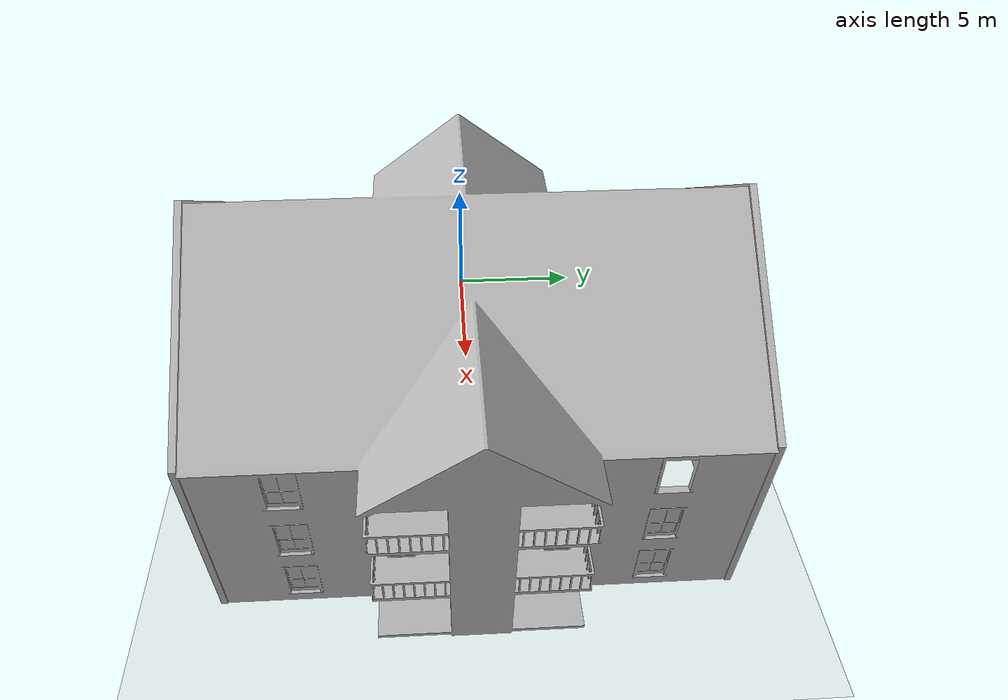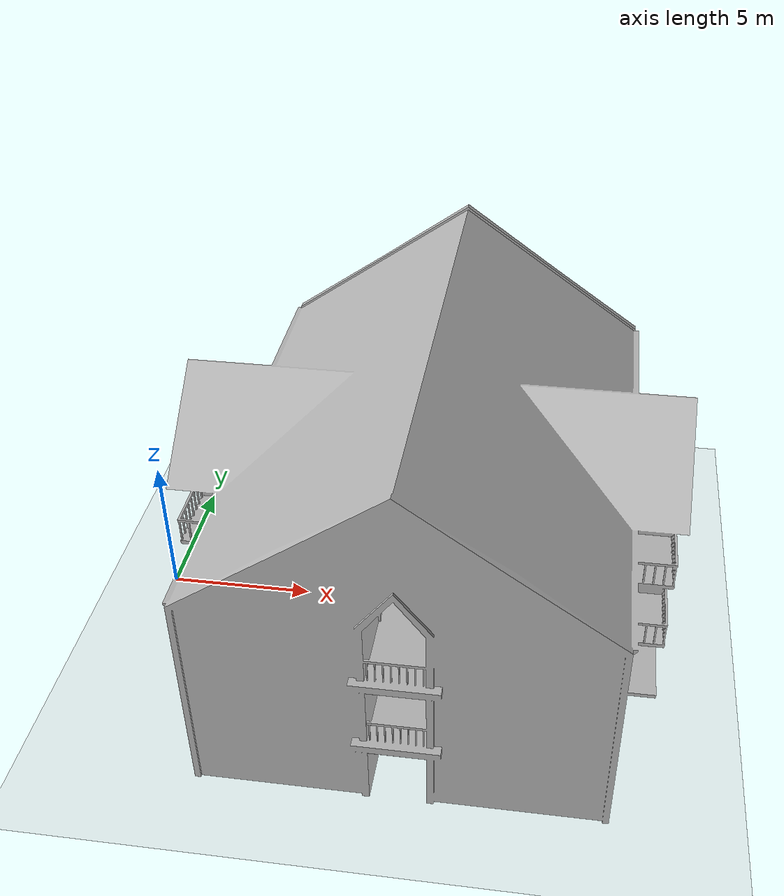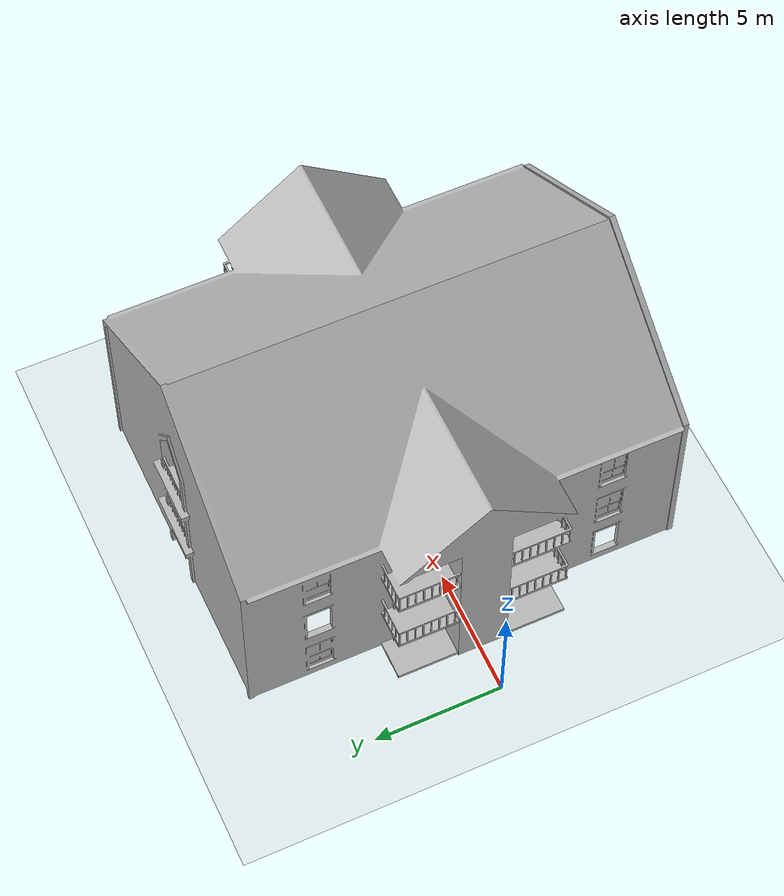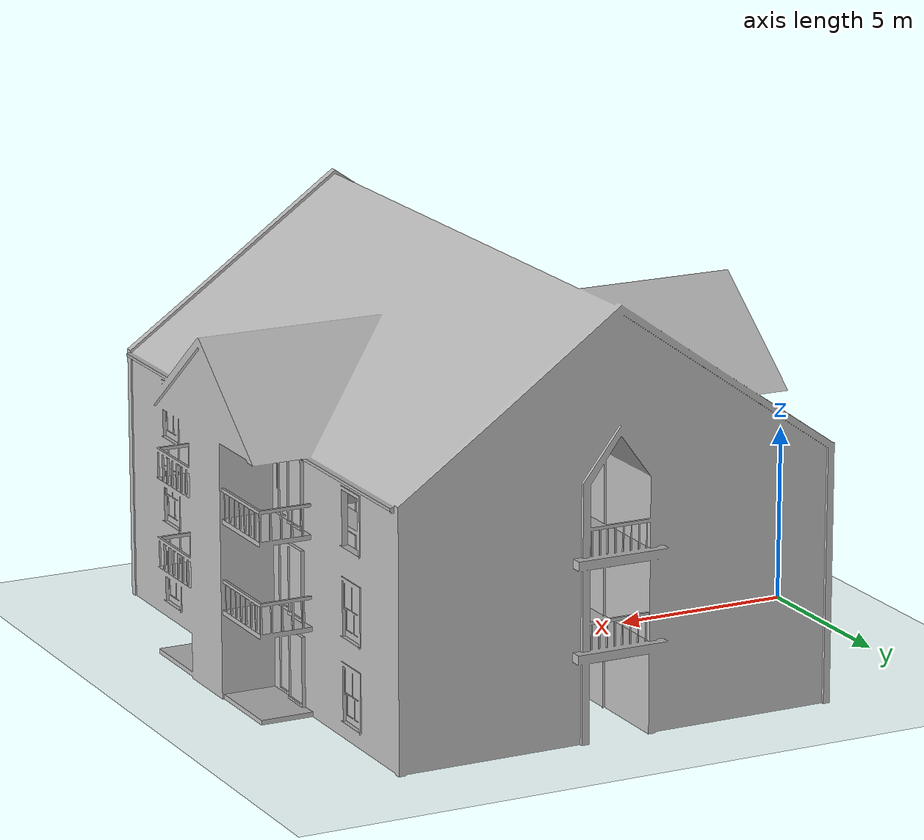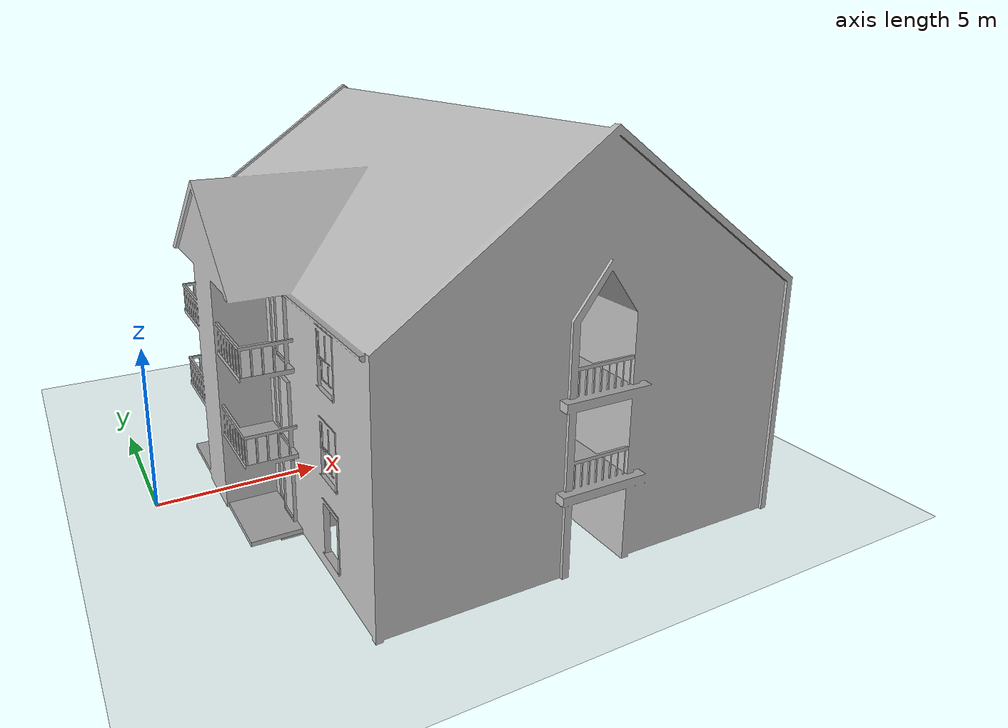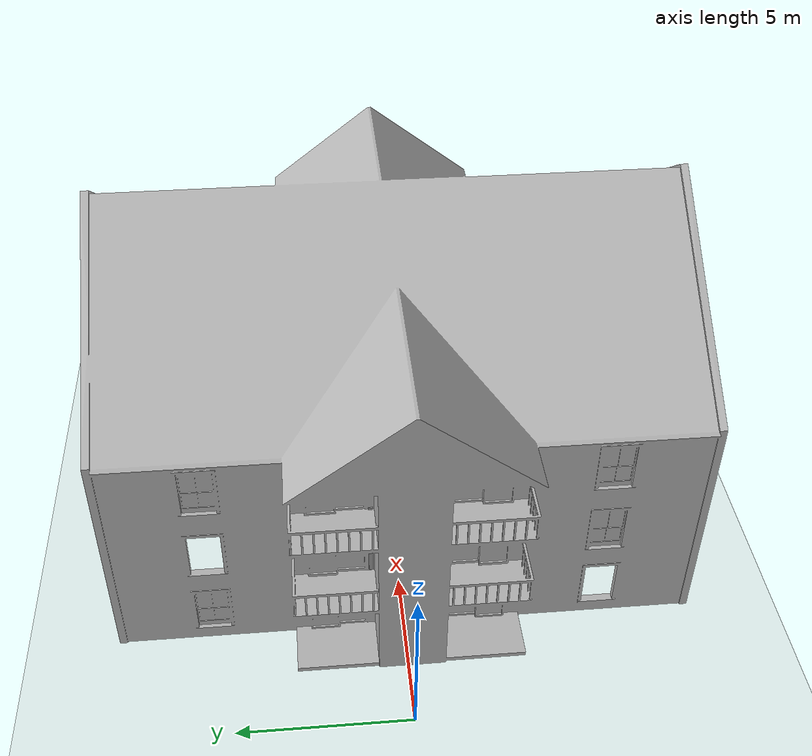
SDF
<sdf version="1.7">
 <world name="default">
  <light name="sun" type="directional">
   <pose>0 0 10 0 -0 0</pose>
   <diffuse>0.8 0.8 0.8 1</diffuse>
   <specular>0.2 0.2 0.2 1</specular>
   <attenuation>
    <range>1000</range>
    <constant>0.9</constant>
    <linear>0.01</linear>
    <quadratic>0.001</quadratic>
   </attenuation>
   <direction>-0.5 0.1 -0.9</direction>
   <spot><inner_angle>0</inner_angle><outer_angle>0</outer_angle><falloff>0</falloff></spot>
  </light>
  <model name="ground_plane">
   <static>1</static>
   <link name="link">
    <collision name="collision">
     <geometry><plane><normal>0 0 1</normal><size>100 100</size></plane></geometry>
     <surface>
      <contact><collide_bitmask>65535</collide_bitmask></contact>
      <friction><ode><mu>100</mu><mu2>50</mu2></ode></friction>
     </surface>
    </collision>
    <visual name="visual">
     <cast_shadows>0</cast_shadows>
     <geometry><plane><normal>0 0 1</normal><size>100 100</size></plane></geometry>
     <material>
      <script><uri>file://media/materials/scripts/gazebo.material</uri><name>Gazebo/Grey</name></script>
     </material>
    </visual>
   </link>
  </model>
  <gravity>0 0 -9.8</gravity>
  <magnetic_field>6e-06 2.3e-05 -4.2e-05</magnetic_field>
  <atmosphere type="adiabatic"/>
  <physics name="default_physics" default="0" type="ode">
   <max_step_size>0.001</max_step_size>
   <real_time_factor>1</real_time_factor>
   <real_time_update_rate>1000</real_time_update_rate>
  </physics>
  <scene><ambient>0.4 0.4 0.4 1</ambient><background>0.7 0.7 0.7 1</background><shadows>1</shadows></scene>
  <spherical_coordinates>
   <surface_model>EARTH_WGS84</surface_model>
   <latitude_deg>0</latitude_deg>
   <longitude_deg>0</longitude_deg>
   <elevation>0</elevation>
   <heading_deg>0</heading_deg>
  </spherical_coordinates>
  <model name="apartment">
   <static>1</static>
   <link name="link">
    <collision name="collision">
     <geometry><mesh><uri>model://apartment/meshes/apartment.dae</uri></mesh></geometry>
    </collision>
    <visual name="visual">
     <geometry><mesh><uri>model://apartment/meshes/apartment.dae</uri></mesh></geometry>
    </visual>
   </link>
   <pose>9.69142 -0.116333 0 0 -0 0</pose>
  </model>
  <model name="unit_box">
   <static>1</static>
   <pose>6.09983 -1.16151 0.5 0 -0 0</pose>
   <link name="link">
    <inertial>
     <mass>1</mass>
     <inertia>
      <ixx>0.166667</ixx>
      <ixy>0</ixy>
      <ixz>0</ixz>
      <iyy>0.166667</iyy>
      <iyz>0</iyz>
      <izz>0.166667</izz>
     </inertia>
    </inertial>
    <collision name="collision"><geometry><box><size>5.42386 0.128205 4.07191</size></box></geometry></collision>
    <visual name="visual">
     <geometry><box><size>5.42386 0.128205 4.07191</size></box></geometry>
     <material>
      <script><name>Gazebo/Grey</name><uri>file://media/materials/scripts/gazebo.material</uri></script>
     </material>
    </visual>
   </link>
  </model>
  <model name="unit_box_clone">
   <static>1</static>
   <pose>6.05293 0.956084 3.80665 0 -0 0</pose>
   <link name="link">
    <inertial>
     <mass>1</mass>
     <inertia>
      <ixx>0.166667</ixx>
      <ixy>0</ixy>
      <ixz>0</ixz>
      <iyy>0.166667</iyy>
      <iyz>0</iyz>
      <izz>0.166667</izz>
     </inertia>
    </inertial>
    <collision name="collision"><geometry><box><size>5.42386 0.128205 2.53356</size></box></geometry></collision>
    <visual name="visual">
     <geometry><box><size>5.42386 0.128205 2.53356</size></box></geometry>
     <material>
      <script><name>Gazebo/Grey</name><uri>file://media/materials/scripts/gazebo.material</uri></script>
     </material>
    </visual>
   </link>
  </model>
  <model name="unit_box_clone_clone">
   <static>1</static>
   <pose>13.2861 1.03608 6.2632 0 -0 0</pose>
   <link name="link">
    <inertial>
     <mass>1</mass>
     <inertia>
      <ixx>0.166667</ixx>
      <ixy>0</ixy>
      <ixz>0</ixz>
      <iyy>0.166667</iyy>
      <iyz>0</iyz>
      <izz>0.166667</izz>
     </inertia>
    </inertial>
    <collision name="collision"><geometry><box><size>5.42386 0.128205 2.53356</size></box></geometry></collision>
    <visual name="visual">
     <geometry><box><size>5.42386 0.128205 2.53356</size></box></geometry>
     <material>
      <script><name>Gazebo/Grey</name><uri>file://media/materials/scripts/gazebo.material</uri></script>
     </material>
    </visual>
   </link>
  </model>
 </world>
</sdf>
